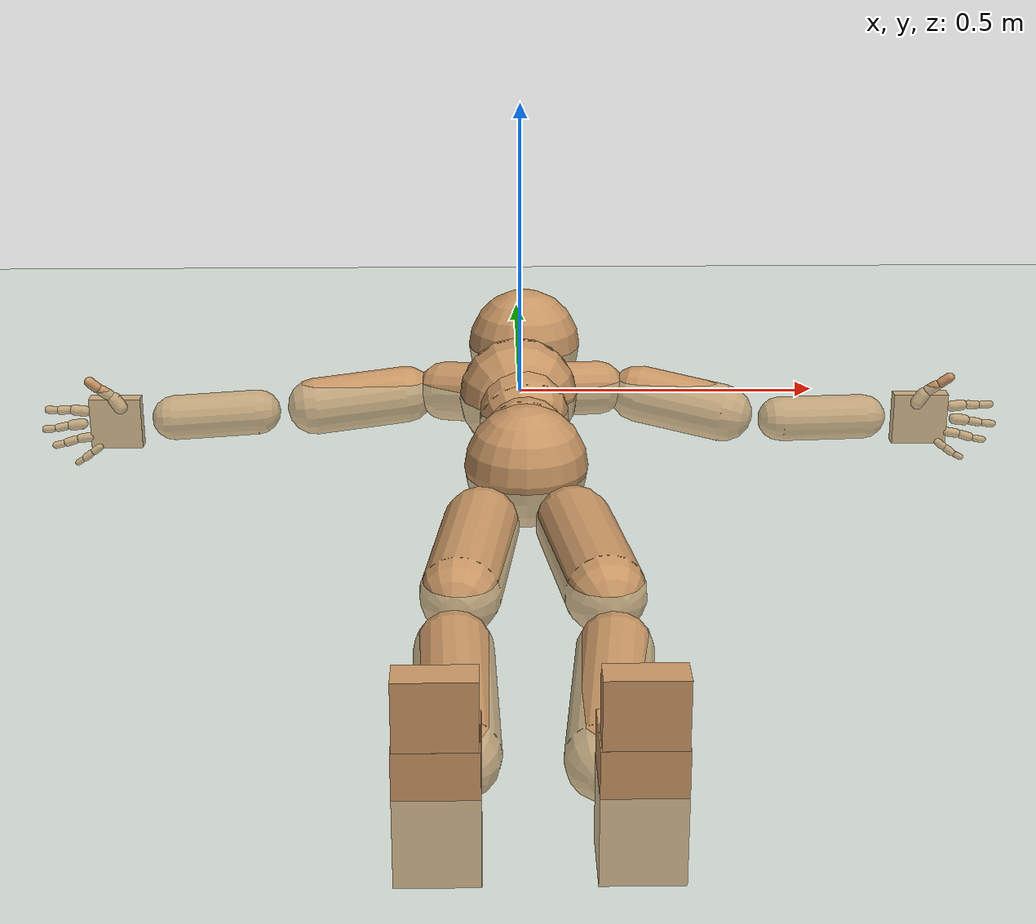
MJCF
<mujoco model="humanoid">
  <compiler coordinate="local"/>
  <default>
    <joint damping="0.0" armature="0.01" stiffness="0.0" limited="true"/>
    <geom conaffinity="1" condim="3" contype="7" margin="0.001" rgba="0.8 0.6 .4 1"/>
  </default>
  <asset>
    <texture type="skybox" builtin="gradient" rgb1=".4 .5 .6" rgb2="0 0 0" width="100" height="100"/>
    <texture builtin="flat" height="1278" mark="cross" markrgb="1 1 1" name="texgeom" random="0.01" rgb1="0.8 0.6 0.4" rgb2="0.8 0.6 0.4" type="cube" width="127"/>
    <texture builtin="checker" height="100" name="texplane" rgb1="0 0 0" rgb2="0.8 0.8 0.8" type="2d" width="100"/>
    <material name="MatPlane" reflectance="0.5" shininess="1" specular="1" texrepeat="60 60" texture="texplane"/>
    <material name="geom" texture="texgeom" texuniform="true"/>
  </asset>
  <worldbody>
    <light cutoff="100" diffuse="1 1 1" dir="-0 0 -1.3" directional="true" exponent="1" pos="0 0 1.3" specular=".1 .1 .1"/>
    <geom conaffinity="1" condim="3" name="floor" pos="0 0 0" rgba="0.8 0.9 0.8 1" size="100 100 .2" type="plane" material="MatPlane"/>
    <body name="Pelvis" pos="0.0029 -0.3604 0.0077">
      <freejoint name="Pelvis"/>
      <geom type="sphere" contype="1" conaffinity="1" density="4629.6296296296305" size="0.0954" pos="0.0000 0.0000 0.0000" name="Pelvis"/>
      <body name="L_Hip" pos="0.0553 -0.0918 -0.0242">
        <joint name="L_Hip_x" type="hinge" pos="0 0 0" axis="1 0 0" user="250 2.5 1 500 10 2" armature="0.01" range="-90.0000 90.0000" damping="0" stiffness="0"/>
        <joint name="L_Hip_y" type="hinge" pos="0 0 0" axis="0 1 0" user="250 2.5 1 500 10 2" armature="0.01" range="-90.0000 90.0000" damping="0" stiffness="0"/>
        <joint name="L_Hip_z" type="hinge" pos="0 0 0" axis="0 0 1" user="250 2.5 1 500 10 2" armature="0.01" range="-90.0000 90.0000" damping="0" stiffness="0"/>
        <geom type="capsule" contype="1" conaffinity="1" density="2040.816327" fromto="0.0111 -0.0738 -0.0013 0.0445 -0.2952 -0.0052" size="0.0569" name="L_Hip"/>
        <body name="L_Knee" pos="0.0556 -0.3689 -0.0065">
          <joint name="L_Knee_x" type="hinge" pos="0 0 0" axis="1 0 0" user="250 2.5 1 500 10 2" armature="0.01" range="-180.0000 180.0000" damping="0" stiffness="0"/>
          <joint name="L_Knee_y" type="hinge" pos="0 0 0" axis="0 1 0" user="250 2.5 1 500 10 2" armature="0.01" range="-5.6250 5.6250" damping="0" stiffness="0"/>
          <joint name="L_Knee_z" type="hinge" pos="0 0 0" axis="0 0 1" user="250 2.5 1 500 10 2" armature="0.01" range="-5.6250 5.6250" damping="0" stiffness="0"/>
          <geom type="capsule" contype="1" conaffinity="1" density="1234.567901" fromto="-0.0082 -0.0786 -0.0057 -0.0327 -0.3144 -0.0227" size="0.0505" name="L_Knee"/>
          <body name="L_Ankle" pos="-0.0409 -0.393 -0.0284">
            <joint name="L_Ankle_x" type="hinge" pos="0 0 0" axis="1 0 0" user="150 2.5 1 500 10 2" armature="0.01" range="-90.0000 90.0000" damping="0" stiffness="0"/>
            <joint name="L_Ankle_y" type="hinge" pos="0 0 0" axis="0 1 0" user="150 2.5 1 500 10 2" armature="0.01" range="-90.0000 90.0000" damping="0" stiffness="0"/>
            <joint name="L_Ankle_z" type="hinge" pos="0 0 0" axis="0 0 1" user="150 2.5 1 500 10 2" armature="0.01" range="-90.0000 90.0000" damping="0" stiffness="0"/>
            <geom type="box" density="442.192961" pos="0.0393 -0.0284 0.0233" size="0.0486 0.046 0.0839" quat="1.0000 0.0000 0.0000 0.0000" name="L_Ankle"/>
            <body name="L_Toe" pos="0.0455 -0.0576 0.1164">
              <joint name="L_Toe_x" type="hinge" pos="0 0 0" axis="1 0 0" user="150 1 1 500 1 1" armature="0.01" range="-90.0000 90.0000" damping="0" stiffness="0"/>
              <joint name="L_Toe_y" type="hinge" pos="0 0 0" axis="0 1 0" user="150 1 1 500 1 1" armature="0.01" range="-45.0000 45.0000" damping="0" stiffness="0"/>
              <joint name="L_Toe_z" type="hinge" pos="0 0 0" axis="0 0 1" user="150 1 1 500 1 1" armature="0.01" range="-45.0000 45.0000" damping="0" stiffness="0"/>
              <geom type="box" density="423.525445" pos="-0.0061 0.0036 0.0255" size="0.0471 0.0203 0.0491" quat="1.0000 0.0000 0.0000 0.0000" name="L_Toe"/>
            </body>
          </body>
        </body>
      </body>
      <body name="R_Hip" pos="-0.0602 -0.1032 -0.0197">
        <joint name="R_Hip_x" type="hinge" pos="0 0 0" axis="1 0 0" user="250 2.5 1 500 10 2" armature="0.01" range="-90.0000 90.0000" damping="0" stiffness="0"/>
        <joint name="R_Hip_y" type="hinge" pos="0 0 0" axis="0 1 0" user="250 2.5 1 500 10 2" armature="0.01" range="-90.0000 90.0000" damping="0" stiffness="0"/>
        <joint name="R_Hip_z" type="hinge" pos="0 0 0" axis="0 0 1" user="250 2.5 1 500 10 2" armature="0.01" range="-90.0000 90.0000" damping="0" stiffness="0"/>
        <geom type="capsule" contype="1" conaffinity="1" density="2040.816327" fromto="-0.0091 -0.0704 -0.0027 -0.0364 -0.2818 -0.0109" size="0.0561" name="R_Hip"/>
        <body name="R_Knee" pos="-0.0455 -0.3522 -0.0136">
          <joint name="R_Knee_x" type="hinge" pos="0 0 0" axis="1 0 0" user="250 2.5 1 500 10 2" armature="0.01" range="-180.0000 180.0000" damping="0" stiffness="0"/>
          <joint name="R_Knee_y" type="hinge" pos="0 0 0" axis="0 1 0" user="250 2.5 1 500 10 2" armature="0.01" range="-5.6250 5.6250" damping="0" stiffness="0"/>
          <joint name="R_Knee_z" type="hinge" pos="0 0 0" axis="0 0 1" user="250 2.5 1 500 10 2" armature="0.01" range="-5.6250 5.6250" damping="0" stiffness="0"/>
          <geom type="capsule" contype="1" conaffinity="1" density="1234.567901" fromto="0.0029 -0.0802 -0.0034 0.0114 -0.3206 -0.0138" size="0.052" name="R_Knee"/>
          <body name="R_Ankle" pos="0.0143 -0.4008 -0.0172">
            <joint name="R_Ankle_x" type="hinge" pos="0 0 0" axis="1 0 0" user="150 1 1 500 10 2" armature="0.01" range="-90.0000 90.0000" damping="0" stiffness="0"/>
            <joint name="R_Ankle_y" type="hinge" pos="0 0 0" axis="0 1 0" user="150 1 1 500 10 2" armature="0.01" range="-90.0000 90.0000" damping="0" stiffness="0"/>
            <joint name="R_Ankle_z" type="hinge" pos="0 0 0" axis="0 0 1" user="150 1 1 500 10 2" armature="0.01" range="-90.0000 90.0000" damping="0" stiffness="0"/>
            <geom type="box" density="442.193225" pos="-0.0238 -0.0259 0.0146" size="0.0486 0.046 0.0839" quat="1.0000 0.0000 0.0000 0.0000" name="R_Ankle"/>
            <body name="R_Toe" pos="-0.0378 -0.0579 0.1174">
              <joint name="R_Toe_x" type="hinge" pos="0 0 0" axis="1 0 0" user="150 1 1 500 1 1" armature="0.01" range="-90.0000 90.0000" damping="0" stiffness="0"/>
              <joint name="R_Toe_y" type="hinge" pos="0 0 0" axis="0 1 0" user="150 1 1 500 1 1" armature="0.01" range="-45.0000 45.0000" damping="0" stiffness="0"/>
              <joint name="R_Toe_z" type="hinge" pos="0 0 0" axis="0 0 1" user="150 1 1 500 1 1" armature="0.01" range="-45.0000 45.0000" damping="0" stiffness="0"/>
              <geom type="box" density="423.532219" pos="0.0140 0.0064 0.0158" size="0.0471 0.0203 0.0491" quat="1.0000 0.0000 0.0000 0.0000" name="R_Toe"/>
            </body>
          </body>
        </body>
      </body>
      <body name="Torso" pos="-0.0025 0.109 -0.0268">
        <joint name="Torso_x" type="hinge" pos="0 0 0" axis="1 0 0" user="500 5 1 500 10 2" armature="0.01" range="-60.0000 60.0000" damping="0" stiffness="0"/>
        <joint name="Torso_y" type="hinge" pos="0 0 0" axis="0 1 0" user="500 5 1 500 10 2" armature="0.01" range="-60.0000 60.0000" damping="0" stiffness="0"/>
        <joint name="Torso_z" type="hinge" pos="0 0 0" axis="0 0 1" user="500 5 1 500 10 2" armature="0.01" range="-60.0000 60.0000" damping="0" stiffness="0"/>
        <geom type="capsule" contype="1" conaffinity="1" density="2040.816327" fromto="0.0041 0.0618 -0.0024 0.0051 0.0756 -0.0029" size="0.0713" name="Torso"/>
        <body name="Spine" pos="0.0092 0.1374 -0.0053">
          <joint name="Spine_x" type="hinge" pos="0 0 0" axis="1 0 0" user="500 5 1 500 10 2" armature="0.01" range="-60.0000 60.0000" damping="0" stiffness="0"/>
          <joint name="Spine_y" type="hinge" pos="0 0 0" axis="0 1 0" user="500 5 1 500 10 2" armature="0.01" range="-60.0000 60.0000" damping="0" stiffness="0"/>
          <joint name="Spine_z" type="hinge" pos="0 0 0" axis="0 0 1" user="500 5 1 500 10 2" armature="0.01" range="-60.0000 60.0000" damping="0" stiffness="0"/>
          <geom type="capsule" contype="1" conaffinity="1" density="2040.816327" fromto="-0.0051 0.0240 0.0113 -0.0062 0.0293 0.0138" size="0.0753" name="Spine"/>
          <body name="Chest" pos="-0.0114 0.0533 0.0252">
            <joint name="Chest_x" type="hinge" pos="0 0 0" axis="1 0 0" user="500 5 1 500 10 2" armature="0.01" range="-60.0000 60.0000" damping="0" stiffness="0"/>
            <joint name="Chest_y" type="hinge" pos="0 0 0" axis="0 1 0" user="500 5 1 500 10 2" armature="0.01" range="-60.0000 60.0000" damping="0" stiffness="0"/>
            <joint name="Chest_z" type="hinge" pos="0 0 0" axis="0 0 1" user="500 5 1 500 10 2" armature="0.01" range="-60.0000 60.0000" damping="0" stiffness="0"/>
            <geom type="capsule" contype="1" conaffinity="1" density="2040.816327" fromto="-0.0019 0.0504 -0.0074 -0.0023 0.0616 -0.0090" size="0.1007" name="Chest"/>
            <body name="Neck" pos="-0.0118 0.166 -0.0292">
              <joint name="Neck_x" type="hinge" pos="0 0 0" axis="1 0 0" user="150 1 1 250 50 4" armature="0.01" range="-180.0000 180.0000" damping="0" stiffness="0"/>
              <joint name="Neck_y" type="hinge" pos="0 0 0" axis="0 1 0" user="150 1 1 250 50 4" armature="0.01" range="-180.0000 180.0000" damping="0" stiffness="0"/>
              <joint name="Neck_z" type="hinge" pos="0 0 0" axis="0 0 1" user="150 1 1 250 50 4" armature="0.01" range="-180.0000 180.0000" damping="0" stiffness="0"/>
              <geom type="capsule" contype="1" conaffinity="1" density="1000" fromto="0.0049 0.0318 0.0052 0.0197 0.1272 0.0207" size="0.0419" name="Neck"/>
              <body name="Head" pos="0.0247 0.159 0.0259">
                <joint name="Head_x" type="hinge" pos="0 0 0" axis="1 0 0" user="150 1 1 250 50 4" armature="0.01" range="-90.0000 90.0000" damping="0" stiffness="0"/>
                <joint name="Head_y" type="hinge" pos="0 0 0" axis="0 1 0" user="150 1 1 250 50 4" armature="0.01" range="-90.0000 90.0000" damping="0" stiffness="0"/>
                <joint name="Head_z" type="hinge" pos="0 0 0" axis="0 0 1" user="150 1 1 250 50 4" armature="0.01" range="-90.0000 90.0000" damping="0" stiffness="0"/>
                <geom type="sphere" contype="1" conaffinity="1" density="1000" size="0.1021" pos="0.0000 0.0000 0.0000" name="Head"/>
              </body>
            </body>
            <body name="L_Thorax" pos="0.0457 0.0853 -0.007">
              <joint name="L_Thorax_x" type="hinge" pos="0 0 0" axis="1 0 0" user="200 2 1 500 50 4" armature="0.01" range="-180.0000 180.0000" damping="0" stiffness="0"/>
              <joint name="L_Thorax_y" type="hinge" pos="0 0 0" axis="0 1 0" user="200 2 1 500 50 4" armature="0.01" range="-180.0000 180.0000" damping="0" stiffness="0"/>
              <joint name="L_Thorax_z" type="hinge" pos="0 0 0" axis="0 0 1" user="200 2 1 500 50 4" armature="0.01" range="-180.0000 180.0000" damping="0" stiffness="0"/>
              <geom type="capsule" contype="1" conaffinity="1" density="1000" fromto="0.0233 0.0123 -0.0036 0.0930 0.0490 -0.0145" size="0.047" name="L_Thorax"/>
              <body name="L_Shoulder" pos="0.1163 0.0613 -0.0181">
                <joint name="L_Shoulder_x" type="hinge" pos="0 0 0" axis="1 0 0" user="200 2 1 500 50 4" armature="0.01" range="-180.0000 180.0000" damping="0" stiffness="0"/>
                <joint name="L_Shoulder_y" type="hinge" pos="0 0 0" axis="0 1 0" user="200 2 1 500 50 4" armature="0.01" range="-180.0000 180.0000" damping="0" stiffness="0"/>
                <joint name="L_Shoulder_z" type="hinge" pos="0 0 0" axis="0 0 1" user="200 2 1 500 50 4" armature="0.01" range="-180.0000 180.0000" damping="0" stiffness="0"/>
                <geom type="capsule" contype="1" conaffinity="1" density="1000" fromto="0.0490 -0.0135 -0.0076 0.1959 -0.0538 -0.0303" size="0.0498" name="L_Shoulder"/>
                <body name="L_Elbow" pos="0.2448 -0.0673 -0.0379">
                  <joint name="L_Elbow_x" type="hinge" pos="0 0 0" axis="1 0 0" user="150 1 1 150 10 2" armature="0.01" range="-720.0000 720.0000" damping="0" stiffness="0"/>
                  <joint name="L_Elbow_y" type="hinge" pos="0 0 0" axis="0 1 0" user="150 1 1 150 10 2" armature="0.01" range="-720.0000 720.0000" damping="0" stiffness="0"/>
                  <joint name="L_Elbow_z" type="hinge" pos="0 0 0" axis="0 0 1" user="150 1 1 150 10 2" armature="0.01" range="-720.0000 720.0000" damping="0" stiffness="0"/>
                  <geom type="capsule" contype="1" conaffinity="1" density="1000" fromto="0.0492 0.0046 -0.0005 0.1970 0.0183 -0.0020" size="0.0386" name="L_Elbow"/>
                  <body name="L_Wrist" pos="0.2462 0.0229 -0.0025">
                    <joint name="L_Wrist_x" type="hinge" pos="0 0 0" axis="1 0 0" user="100 1 1 150 1 1" armature="0.01" range="-180.0000 180.0000" damping="0" stiffness="0"/>
                    <joint name="L_Wrist_y" type="hinge" pos="0 0 0" axis="0 1 0" user="100 1 1 150 1 1" armature="0.01" range="-180.0000 180.0000" damping="0" stiffness="0"/>
                    <joint name="L_Wrist_z" type="hinge" pos="0 0 0" axis="0 0 1" user="100 1 1 150 1 1" armature="0.01" range="-180.0000 180.0000" damping="0" stiffness="0"/>
                    <geom type="box" density="1210.549828" pos="0.0511 -0.0012 -0.0030" size="0.0473 0.0119 0.0452" quat="1.0000 0.0000 0.0000 0.0000" name="L_Wrist"/>
                    <body name="L_Index1" pos="0.0996 -0.0082 0.0191">
                      <joint name="L_Index1_x" type="hinge" pos="0 0 0" axis="1 0 0" user="100 10 1 150" armature="0.01" range="-180.0000 180.0000" damping="0" stiffness="0"/>
                      <joint name="L_Index1_y" type="hinge" pos="0 0 0" axis="0 1 0" user="100 10 1 150" armature="0.01" range="-180.0000 180.0000" damping="0" stiffness="0"/>
                      <joint name="L_Index1_z" type="hinge" pos="0 0 0" axis="0 0 1" user="100 10 1 150" armature="0.01" range="-180.0000 180.0000" damping="0" stiffness="0"/>
                      <geom type="capsule" contype="1" conaffinity="1" density="1000" fromto="0.0063 0.0004 0.0006 0.0253 0.0017 0.0023" size="0.0091" name="L_Index1"/>
                      <body name="L_Index2" pos="0.0316 0.0021 0.0029">
                        <joint name="L_Index2_x" type="hinge" pos="0 0 0" axis="1 0 0" user="100 10 1 150" armature="0.01" range="-180.0000 180.0000" damping="0" stiffness="0"/>
                        <joint name="L_Index2_y" type="hinge" pos="0 0 0" axis="0 1 0" user="100 10 1 150" armature="0.01" range="-180.0000 180.0000" damping="0" stiffness="0"/>
                        <joint name="L_Index2_z" type="hinge" pos="0 0 0" axis="0 0 1" user="100 10 1 150" armature="0.01" range="-180.0000 180.0000" damping="0" stiffness="0"/>
                        <geom type="capsule" contype="1" conaffinity="1" density="1000" fromto="0.0045 -0.0005 -0.0000 0.0178 -0.0019 -0.0001" size="0.0075" name="L_Index2"/>
                        <body name="L_Index3" pos="0.0223 -0.0024 -0.0001">
                          <joint name="L_Index3_x" type="hinge" pos="0 0 0" axis="1 0 0" user="100 10 1 150" armature="0.01" range="-180.0000 180.0000" damping="0" stiffness="0"/>
                          <joint name="L_Index3_y" type="hinge" pos="0 0 0" axis="0 1 0" user="100 10 1 150" armature="0.01" range="-180.0000 180.0000" damping="0" stiffness="0"/>
                          <joint name="L_Index3_z" type="hinge" pos="0 0 0" axis="0 0 1" user="100 10 1 150" armature="0.01" range="-180.0000 180.0000" damping="0" stiffness="0"/>
                          <geom type="capsule" contype="1" conaffinity="1" density="1000" fromto="0.0049 -0.0001 0.0004 0.0194 -0.0003 0.0015" size="0.0064" name="L_Index3"/>
                        </body>
                      </body>
                    </body>
                    <body name="L_Middle1" pos="0.107 -0.0061 -0.0038">
                      <joint name="L_Middle1_x" type="hinge" pos="0 0 0" axis="1 0 0" user="100 10 1 150" armature="0.01" range="-180.0000 180.0000" damping="0" stiffness="0"/>
                      <joint name="L_Middle1_y" type="hinge" pos="0 0 0" axis="0 1 0" user="100 10 1 150" armature="0.01" range="-180.0000 180.0000" damping="0" stiffness="0"/>
                      <joint name="L_Middle1_z" type="hinge" pos="0 0 0" axis="0 0 1" user="100 10 1 150" armature="0.01" range="-180.0000 180.0000" damping="0" stiffness="0"/>
                      <geom type="capsule" contype="1" conaffinity="1" density="1000" fromto="0.0061 0.0001 -0.0008 0.0243 0.0006 -0.0032" size="0.0093" name="L_Middle1"/>
                      <body name="L_Middle2" pos="0.0304 0.0007 -0.004">
                        <joint name="L_Middle2_x" type="hinge" pos="0 0 0" axis="1 0 0" user="100 10 1 150" armature="0.01" range="-180.0000 180.0000" damping="0" stiffness="0"/>
                        <joint name="L_Middle2_y" type="hinge" pos="0 0 0" axis="0 1 0" user="100 10 1 150" armature="0.01" range="-180.0000 180.0000" damping="0" stiffness="0"/>
                        <joint name="L_Middle2_z" type="hinge" pos="0 0 0" axis="0 0 1" user="100 10 1 150" armature="0.01" range="-180.0000 180.0000" damping="0" stiffness="0"/>
                        <geom type="capsule" contype="1" conaffinity="1" density="1000" fromto="0.0047 -0.0004 -0.0008 0.0186 -0.0016 -0.0033" size="0.007" name="L_Middle2"/>
                        <body name="L_Middle3" pos="0.0233 -0.002 -0.0041">
                          <joint name="L_Middle3_x" type="hinge" pos="0 0 0" axis="1 0 0" user="100 10 1 150" armature="0.01" range="-180.0000 180.0000" damping="0" stiffness="0"/>
                          <joint name="L_Middle3_y" type="hinge" pos="0 0 0" axis="0 1 0" user="100 10 1 150" armature="0.01" range="-180.0000 180.0000" damping="0" stiffness="0"/>
                          <joint name="L_Middle3_z" type="hinge" pos="0 0 0" axis="0 0 1" user="100 10 1 150" armature="0.01" range="-180.0000 180.0000" damping="0" stiffness="0"/>
                          <geom type="capsule" contype="1" conaffinity="1" density="1000" fromto="0.0051 -0.0000 -0.0004 0.0202 -0.0000 -0.0017" size="0.0061" name="L_Middle3"/>
                        </body>
                      </body>
                    </body>
                    <body name="L_Pinky1" pos="0.0821 -0.0138 -0.043">
                      <joint name="L_Pinky1_x" type="hinge" pos="0 0 0" axis="1 0 0" user="100 10 1 150" armature="0.01" range="-180.0000 180.0000" damping="0" stiffness="0"/>
                      <joint name="L_Pinky1_y" type="hinge" pos="0 0 0" axis="0 1 0" user="100 10 1 150" armature="0.01" range="-180.0000 180.0000" damping="0" stiffness="0"/>
                      <joint name="L_Pinky1_z" type="hinge" pos="0 0 0" axis="0 0 1" user="100 10 1 150" armature="0.01" range="-180.0000 180.0000" damping="0" stiffness="0"/>
                      <geom type="capsule" contype="1" conaffinity="1" density="1000" fromto="0.0031 -0.0002 -0.0024 0.0124 -0.0009 -0.0095" size="0.0066" name="L_Pinky1"/>
                      <body name="L_Pinky2" pos="0.0155 -0.0011 -0.0118">
                        <joint name="L_Pinky2_x" type="hinge" pos="0 0 0" axis="1 0 0" user="100 10 1 150" armature="0.01" range="-180.0000 180.0000" damping="0" stiffness="0"/>
                        <joint name="L_Pinky2_y" type="hinge" pos="0 0 0" axis="0 1 0" user="100 10 1 150" armature="0.01" range="-180.0000 180.0000" damping="0" stiffness="0"/>
                        <joint name="L_Pinky2_z" type="hinge" pos="0 0 0" axis="0 0 1" user="100 10 1 150" armature="0.01" range="-180.0000 180.0000" damping="0" stiffness="0"/>
                        <geom type="capsule" contype="1" conaffinity="1" density="1000" fromto="0.0031 -0.0003 -0.0022 0.0124 -0.0013 -0.0089" size="0.0065" name="L_Pinky2"/>
                        <body name="L_Pinky3" pos="0.0155 -0.0017 -0.0111">
                          <joint name="L_Pinky3_x" type="hinge" pos="0 0 0" axis="1 0 0" user="100 10 1 150" armature="0.01" range="-180.0000 180.0000" damping="0" stiffness="0"/>
                          <joint name="L_Pinky3_y" type="hinge" pos="0 0 0" axis="0 1 0" user="100 10 1 150" armature="0.01" range="-180.0000 180.0000" damping="0" stiffness="0"/>
                          <joint name="L_Pinky3_z" type="hinge" pos="0 0 0" axis="0 0 1" user="100 10 1 150" armature="0.01" range="-180.0000 180.0000" damping="0" stiffness="0"/>
                          <geom type="capsule" contype="1" conaffinity="1" density="1000" fromto="0.0035 0.0001 -0.0018 0.0140 0.0003 -0.0073" size="0.0049" name="L_Pinky3"/>
                        </body>
                      </body>
                    </body>
                    <body name="L_Ring1" pos="0.0953 -0.0088 -0.0268">
                      <joint name="L_Ring1_x" type="hinge" pos="0 0 0" axis="1 0 0" user="100 10 1 150" armature="0.01" range="-180.0000 180.0000" damping="0" stiffness="0"/>
                      <joint name="L_Ring1_y" type="hinge" pos="0 0 0" axis="0 1 0" user="100 10 1 150" armature="0.01" range="-180.0000 180.0000" damping="0" stiffness="0"/>
                      <joint name="L_Ring1_z" type="hinge" pos="0 0 0" axis="0 0 1" user="100 10 1 150" armature="0.01" range="-180.0000 180.0000" damping="0" stiffness="0"/>
                      <geom type="capsule" contype="1" conaffinity="1" density="1000" fromto="0.0056 0.0003 -0.0011 0.0222 0.0011 -0.0042" size="0.0079" name="L_Ring1"/>
                      <body name="L_Ring2" pos="0.0278 0.0013 -0.0053">
                        <joint name="L_Ring2_x" type="hinge" pos="0 0 0" axis="1 0 0" user="100 10 1 150" armature="0.01" range="-180.0000 180.0000" damping="0" stiffness="0"/>
                        <joint name="L_Ring2_y" type="hinge" pos="0 0 0" axis="0 1 0" user="100 10 1 150" armature="0.01" range="-180.0000 180.0000" damping="0" stiffness="0"/>
                        <joint name="L_Ring2_z" type="hinge" pos="0 0 0" axis="0 0 1" user="100 10 1 150" armature="0.01" range="-180.0000 180.0000" damping="0" stiffness="0"/>
                        <geom type="capsule" contype="1" conaffinity="1" density="1000" fromto="0.0045 -0.0003 -0.0014 0.0181 -0.0012 -0.0056" size="0.0074" name="L_Ring2"/>
                        <body name="L_Ring3" pos="0.0226 -0.0015 -0.0071">
                          <joint name="L_Ring3_x" type="hinge" pos="0 0 0" axis="1 0 0" user="100 10 1 150" armature="0.01" range="-180.0000 180.0000" damping="0" stiffness="0"/>
                          <joint name="L_Ring3_y" type="hinge" pos="0 0 0" axis="0 1 0" user="100 10 1 150" armature="0.01" range="-180.0000 180.0000" damping="0" stiffness="0"/>
                          <joint name="L_Ring3_z" type="hinge" pos="0 0 0" axis="0 0 1" user="100 10 1 150" armature="0.01" range="-180.0000 180.0000" damping="0" stiffness="0"/>
                          <geom type="capsule" contype="1" conaffinity="1" density="1000" fromto="0.0049 0.0001 -0.0010 0.0197 0.0004 -0.0040" size="0.0057" name="L_Ring3"/>
                        </body>
                      </body>
                    </body>
                    <body name="L_Thumb1" pos="0.0395 -0.0173 0.0251">
                      <joint name="L_Thumb1_x" type="hinge" pos="0 0 0" axis="1 0 0" user="100 10 1 150" armature="0.01" range="-180.0000 180.0000" damping="0" stiffness="0"/>
                      <joint name="L_Thumb1_y" type="hinge" pos="0 0 0" axis="0 1 0" user="100 10 1 150" armature="0.01" range="-180.0000 180.0000" damping="0" stiffness="0"/>
                      <joint name="L_Thumb1_z" type="hinge" pos="0 0 0" axis="0 0 1" user="100 10 1 150" armature="0.01" range="-180.0000 180.0000" damping="0" stiffness="0"/>
                      <geom type="capsule" contype="1" conaffinity="1" density="1000" fromto="0.0034 0.0002 0.0049 0.0135 0.0008 0.0197" size="0.0118" name="L_Thumb1"/>
                      <body name="L_Thumb2" pos="0.0169 0.001 0.0246">
                        <joint name="L_Thumb2_x" type="hinge" pos="0 0 0" axis="1 0 0" user="100 10 1 150" armature="0.01" range="-180.0000 180.0000" damping="0" stiffness="0"/>
                        <joint name="L_Thumb2_y" type="hinge" pos="0 0 0" axis="0 1 0" user="100 10 1 150" armature="0.01" range="-180.0000 180.0000" damping="0" stiffness="0"/>
                        <joint name="L_Thumb2_z" type="hinge" pos="0 0 0" axis="0 0 1" user="100 10 1 150" armature="0.01" range="-180.0000 180.0000" damping="0" stiffness="0"/>
                        <geom type="capsule" contype="1" conaffinity="1" density="1000" fromto="0.0041 -0.0010 0.0030 0.0163 -0.0040 0.0122" size="0.0094" name="L_Thumb2"/>
                        <body name="L_Thumb3" pos="0.0204 -0.0051 0.0152">
                          <joint name="L_Thumb3_x" type="hinge" pos="0 0 0" axis="1 0 0" user="100 10 1 150" armature="0.01" range="-180.0000 180.0000" damping="0" stiffness="0"/>
                          <joint name="L_Thumb3_y" type="hinge" pos="0 0 0" axis="0 1 0" user="100 10 1 150" armature="0.01" range="-180.0000 180.0000" damping="0" stiffness="0"/>
                          <joint name="L_Thumb3_z" type="hinge" pos="0 0 0" axis="0 0 1" user="100 10 1 150" armature="0.01" range="-180.0000 180.0000" damping="0" stiffness="0"/>
                          <geom type="capsule" contype="1" conaffinity="1" density="1000" fromto="0.0045 -0.0006 0.0034 0.0179 -0.0024 0.0138" size="0.0086" name="L_Thumb3"/>
                        </body>
                      </body>
                    </body>
                  </body>
                </body>
              </body>
            </body>
            <body name="R_Thorax" pos="-0.0467 0.0848 -0.0132">
              <joint name="R_Thorax_x" type="hinge" pos="0 0 0" axis="1 0 0" user="200 2 1 150 10 2" armature="0.01" range="-180.0000 180.0000" damping="0" stiffness="0"/>
              <joint name="R_Thorax_y" type="hinge" pos="0 0 0" axis="0 1 0" user="200 2 1 150 10 2" armature="0.01" range="-180.0000 180.0000" damping="0" stiffness="0"/>
              <joint name="R_Thorax_z" type="hinge" pos="0 0 0" axis="0 0 1" user="200 2 1 150 10 2" armature="0.01" range="-180.0000 180.0000" damping="0" stiffness="0"/>
              <geom type="capsule" contype="1" conaffinity="1" density="1000" fromto="-0.0200 0.0112 -0.0028 -0.0801 0.0447 -0.0112" size="0.0518" name="R_Thorax"/>
              <body name="R_Shoulder" pos="-0.1001 0.0559 -0.014">
                <joint name="R_Shoulder_x" type="hinge" pos="0 0 0" axis="1 0 0" user="200 2 1 250 10 2" armature="0.01" range="-180.0000 180.0000" damping="0" stiffness="0"/>
                <joint name="R_Shoulder_y" type="hinge" pos="0 0 0" axis="0 1 0" user="200 2 1 250 10 2" armature="0.01" range="-180.0000 180.0000" damping="0" stiffness="0"/>
                <joint name="R_Shoulder_z" type="hinge" pos="0 0 0" axis="0 0 1" user="200 2 1 250 10 2" armature="0.01" range="-180.0000 180.0000" damping="0" stiffness="0"/>
                <geom type="capsule" contype="1" conaffinity="1" density="1000" fromto="-0.0523 -0.0064 -0.0048 -0.2090 -0.0257 -0.0191" size="0.0497" name="R_Shoulder"/>
                <body name="R_Elbow" pos="-0.2613 -0.0321 -0.0239">
                  <joint name="R_Elbow_x" type="hinge" pos="0 0 0" axis="1 0 0" user="150 1 1 150 10 2" armature="0.01" range="-720.0000 720.0000" damping="0" stiffness="0"/>
                  <joint name="R_Elbow_y" type="hinge" pos="0 0 0" axis="0 1 0" user="150 1 1 150 10 2" armature="0.01" range="-720.0000 720.0000" damping="0" stiffness="0"/>
                  <joint name="R_Elbow_z" type="hinge" pos="0 0 0" axis="0 0 1" user="150 1 1 150 10 2" armature="0.01" range="-720.0000 720.0000" damping="0" stiffness="0"/>
                  <geom type="capsule" contype="1" conaffinity="1" density="1000" fromto="-0.0487 -0.0007 -0.0029 -0.1948 -0.0027 -0.0118" size="0.0389" name="R_Elbow"/>
                  <body name="R_Wrist" pos="-0.2435 -0.0034 -0.0147">
                    <joint name="R_Wrist_x" type="hinge" pos="0 0 0" axis="1 0 0" user="100 1 1 150 1 1" armature="0.01" range="-180.0000 180.0000" damping="0" stiffness="0"/>
                    <joint name="R_Wrist_y" type="hinge" pos="0 0 0" axis="0 1 0" user="100 1 1 150 1 1" armature="0.01" range="-180.0000 180.0000" damping="0" stiffness="0"/>
                    <joint name="R_Wrist_z" type="hinge" pos="0 0 0" axis="0 0 1" user="100 1 1 150 1 1" armature="0.01" range="-180.0000 180.0000" damping="0" stiffness="0"/>
                    <geom type="box" density="1240.635769" pos="-0.0524 -0.0043 -0.0026" size="0.0445 0.0119 0.0452" quat="1.0000 0.0000 0.0000 0.0000" name="R_Wrist"/>
                    <body name="R_Index1" pos="-0.0976 -0.0113 0.0195">
                      <joint name="R_Index1_x" type="hinge" pos="0 0 0" axis="1 0 0" user="100 10 1 150" armature="0.01" range="-180.0000 180.0000" damping="0" stiffness="0"/>
                      <joint name="R_Index1_y" type="hinge" pos="0 0 0" axis="0 1 0" user="100 10 1 150" armature="0.01" range="-180.0000 180.0000" damping="0" stiffness="0"/>
                      <joint name="R_Index1_z" type="hinge" pos="0 0 0" axis="0 0 1" user="100 10 1 150" armature="0.01" range="-180.0000 180.0000" damping="0" stiffness="0"/>
                      <geom type="capsule" contype="1" conaffinity="1" density="1000" fromto="-0.0063 0.0004 0.0006 -0.0253 0.0017 0.0023" size="0.0091" name="R_Index1"/>
                      <body name="R_Index2" pos="-0.0316 0.0021 0.0029">
                        <joint name="R_Index2_x" type="hinge" pos="0 0 0" axis="1 0 0" user="100 10 1 150" armature="0.01" range="-180.0000 180.0000" damping="0" stiffness="0"/>
                        <joint name="R_Index2_y" type="hinge" pos="0 0 0" axis="0 1 0" user="100 10 1 150" armature="0.01" range="-180.0000 180.0000" damping="0" stiffness="0"/>
                        <joint name="R_Index2_z" type="hinge" pos="0 0 0" axis="0 0 1" user="100 10 1 150" armature="0.01" range="-180.0000 180.0000" damping="0" stiffness="0"/>
                        <geom type="capsule" contype="1" conaffinity="1" density="1000" fromto="-0.0045 -0.0005 -0.0000 -0.0178 -0.0019 -0.0001" size="0.0075" name="R_Index2"/>
                        <body name="R_Index3" pos="-0.0223 -0.0024 -0.0001">
                          <joint name="R_Index3_x" type="hinge" pos="0 0 0" axis="1 0 0" user="100 10 1 150" armature="0.01" range="-180.0000 180.0000" damping="0" stiffness="0"/>
                          <joint name="R_Index3_y" type="hinge" pos="0 0 0" axis="0 1 0" user="100 10 1 150" armature="0.01" range="-180.0000 180.0000" damping="0" stiffness="0"/>
                          <joint name="R_Index3_z" type="hinge" pos="0 0 0" axis="0 0 1" user="100 10 1 150" armature="0.01" range="-180.0000 180.0000" damping="0" stiffness="0"/>
                          <geom type="capsule" contype="1" conaffinity="1" density="1000" fromto="-0.0041 -0.0001 0.0004 -0.0162 -0.0003 0.0015" size="0.0067" name="R_Index3"/>
                        </body>
                      </body>
                    </body>
                    <body name="R_Middle1" pos="-0.105 -0.0092 -0.0034">
                      <joint name="R_Middle1_x" type="hinge" pos="0 0 0" axis="1 0 0" user="100 10 1 150" armature="0.01" range="-180.0000 180.0000" damping="0" stiffness="0"/>
                      <joint name="R_Middle1_y" type="hinge" pos="0 0 0" axis="0 1 0" user="100 10 1 150" armature="0.01" range="-180.0000 180.0000" damping="0" stiffness="0"/>
                      <joint name="R_Middle1_z" type="hinge" pos="0 0 0" axis="0 0 1" user="100 10 1 150" armature="0.01" range="-180.0000 180.0000" damping="0" stiffness="0"/>
                      <geom type="capsule" contype="1" conaffinity="1" density="1000" fromto="-0.0061 0.0001 -0.0008 -0.0243 0.0006 -0.0032" size="0.0093" name="R_Middle1"/>
                      <body name="R_Middle2" pos="-0.0304 0.0007 -0.004">
                        <joint name="R_Middle2_x" type="hinge" pos="0 0 0" axis="1 0 0" user="100 10 1 150" armature="0.01" range="-180.0000 180.0000" damping="0" stiffness="0"/>
                        <joint name="R_Middle2_y" type="hinge" pos="0 0 0" axis="0 1 0" user="100 10 1 150" armature="0.01" range="-180.0000 180.0000" damping="0" stiffness="0"/>
                        <joint name="R_Middle2_z" type="hinge" pos="0 0 0" axis="0 0 1" user="100 10 1 150" armature="0.01" range="-180.0000 180.0000" damping="0" stiffness="0"/>
                        <geom type="capsule" contype="1" conaffinity="1" density="1000" fromto="-0.0047 -0.0004 -0.0008 -0.0186 -0.0016 -0.0033" size="0.007" name="R_Middle2"/>
                        <body name="R_Middle3" pos="-0.0233 -0.002 -0.0041">
                          <joint name="R_Middle3_x" type="hinge" pos="0 0 0" axis="1 0 0" user="100 10 1 150" armature="0.01" range="-180.0000 180.0000" damping="0" stiffness="0"/>
                          <joint name="R_Middle3_y" type="hinge" pos="0 0 0" axis="0 1 0" user="100 10 1 150" armature="0.01" range="-180.0000 180.0000" damping="0" stiffness="0"/>
                          <joint name="R_Middle3_z" type="hinge" pos="0 0 0" axis="0 0 1" user="100 10 1 150" armature="0.01" range="-180.0000 180.0000" damping="0" stiffness="0"/>
                          <geom type="capsule" contype="1" conaffinity="1" density="1000" fromto="-0.0043 -0.0000 -0.0004 -0.0170 -0.0000 -0.0017" size="0.0064" name="R_Middle3"/>
                        </body>
                      </body>
                    </body>
                    <body name="R_Pinky1" pos="-0.0802 -0.017 -0.0426">
                      <joint name="R_Pinky1_x" type="hinge" pos="0 0 0" axis="1 0 0" user="100 10 1 150" armature="0.01" range="-180.0000 180.0000" damping="0" stiffness="0"/>
                      <joint name="R_Pinky1_y" type="hinge" pos="0 0 0" axis="0 1 0" user="100 10 1 150" armature="0.01" range="-180.0000 180.0000" damping="0" stiffness="0"/>
                      <joint name="R_Pinky1_z" type="hinge" pos="0 0 0" axis="0 0 1" user="100 10 1 150" armature="0.01" range="-180.0000 180.0000" damping="0" stiffness="0"/>
                      <geom type="capsule" contype="1" conaffinity="1" density="1000" fromto="-0.0031 -0.0002 -0.0024 -0.0124 -0.0009 -0.0095" size="0.0066" name="R_Pinky1"/>
                      <body name="R_Pinky2" pos="-0.0155 -0.0011 -0.0118">
                        <joint name="R_Pinky2_x" type="hinge" pos="0 0 0" axis="1 0 0" user="100 10 1 150" armature="0.01" range="-180.0000 180.0000" damping="0" stiffness="0"/>
                        <joint name="R_Pinky2_y" type="hinge" pos="0 0 0" axis="0 1 0" user="100 10 1 150" armature="0.01" range="-180.0000 180.0000" damping="0" stiffness="0"/>
                        <joint name="R_Pinky2_z" type="hinge" pos="0 0 0" axis="0 0 1" user="100 10 1 150" armature="0.01" range="-180.0000 180.0000" damping="0" stiffness="0"/>
                        <geom type="capsule" contype="1" conaffinity="1" density="1000" fromto="-0.0031 -0.0003 -0.0022 -0.0124 -0.0013 -0.0089" size="0.0065" name="R_Pinky2"/>
                        <body name="R_Pinky3" pos="-0.0155 -0.0017 -0.0111">
                          <joint name="R_Pinky3_x" type="hinge" pos="0 0 0" axis="1 0 0" user="100 10 1 150" armature="0.01" range="-180.0000 180.0000" damping="0" stiffness="0"/>
                          <joint name="R_Pinky3_y" type="hinge" pos="0 0 0" axis="0 1 0" user="100 10 1 150" armature="0.01" range="-180.0000 180.0000" damping="0" stiffness="0"/>
                          <joint name="R_Pinky3_z" type="hinge" pos="0 0 0" axis="0 0 1" user="100 10 1 150" armature="0.01" range="-180.0000 180.0000" damping="0" stiffness="0"/>
                          <geom type="capsule" contype="1" conaffinity="1" density="1000" fromto="-0.0027 0.0001 -0.0018 -0.0108 0.0003 -0.0073" size="0.0052" name="R_Pinky3"/>
                        </body>
                      </body>
                    </body>
                    <body name="R_Ring1" pos="-0.0933 -0.0119 -0.0264">
                      <joint name="R_Ring1_x" type="hinge" pos="0 0 0" axis="1 0 0" user="100 10 1 150" armature="0.01" range="-180.0000 180.0000" damping="0" stiffness="0"/>
                      <joint name="R_Ring1_y" type="hinge" pos="0 0 0" axis="0 1 0" user="100 10 1 150" armature="0.01" range="-180.0000 180.0000" damping="0" stiffness="0"/>
                      <joint name="R_Ring1_z" type="hinge" pos="0 0 0" axis="0 0 1" user="100 10 1 150" armature="0.01" range="-180.0000 180.0000" damping="0" stiffness="0"/>
                      <geom type="capsule" contype="1" conaffinity="1" density="1000" fromto="-0.0056 0.0003 -0.0011 -0.0222 0.0011 -0.0042" size="0.0079" name="R_Ring1"/>
                      <body name="R_Ring2" pos="-0.0278 0.0013 -0.0053">
                        <joint name="R_Ring2_x" type="hinge" pos="0 0 0" axis="1 0 0" user="100 10 1 150" armature="0.01" range="-180.0000 180.0000" damping="0" stiffness="0"/>
                        <joint name="R_Ring2_y" type="hinge" pos="0 0 0" axis="0 1 0" user="100 10 1 150" armature="0.01" range="-180.0000 180.0000" damping="0" stiffness="0"/>
                        <joint name="R_Ring2_z" type="hinge" pos="0 0 0" axis="0 0 1" user="100 10 1 150" armature="0.01" range="-180.0000 180.0000" damping="0" stiffness="0"/>
                        <geom type="capsule" contype="1" conaffinity="1" density="1000" fromto="-0.0045 -0.0003 -0.0014 -0.0181 -0.0012 -0.0056" size="0.0074" name="R_Ring2"/>
                        <body name="R_Ring3" pos="-0.0226 -0.0015 -0.0071">
                          <joint name="R_Ring3_x" type="hinge" pos="0 0 0" axis="1 0 0" user="100 10 1 150" armature="0.01" range="-180.0000 180.0000" damping="0" stiffness="0"/>
                          <joint name="R_Ring3_y" type="hinge" pos="0 0 0" axis="0 1 0" user="100 10 1 150" armature="0.01" range="-180.0000 180.0000" damping="0" stiffness="0"/>
                          <joint name="R_Ring3_z" type="hinge" pos="0 0 0" axis="0 0 1" user="100 10 1 150" armature="0.01" range="-180.0000 180.0000" damping="0" stiffness="0"/>
                          <geom type="capsule" contype="1" conaffinity="1" density="1000" fromto="-0.0041 0.0001 -0.0010 -0.0165 0.0004 -0.0040" size="0.006" name="R_Ring3"/>
                        </body>
                      </body>
                    </body>
                    <body name="R_Thumb1" pos="-0.0375 -0.0205 0.0255">
                      <joint name="R_Thumb1_x" type="hinge" pos="0 0 0" axis="1 0 0" user="100 10 1 150" armature="0.01" range="-180.0000 180.0000" damping="0" stiffness="0"/>
                      <joint name="R_Thumb1_y" type="hinge" pos="0 0 0" axis="0 1 0" user="100 10 1 150" armature="0.01" range="-180.0000 180.0000" damping="0" stiffness="0"/>
                      <joint name="R_Thumb1_z" type="hinge" pos="0 0 0" axis="0 0 1" user="100 10 1 150" armature="0.01" range="-180.0000 180.0000" damping="0" stiffness="0"/>
                      <geom type="capsule" contype="1" conaffinity="1" density="1000" fromto="-0.0034 0.0002 0.0049 -0.0135 0.0008 0.0197" size="0.0118" name="R_Thumb1"/>
                      <body name="R_Thumb2" pos="-0.0169 0.001 0.0246">
                        <joint name="R_Thumb2_x" type="hinge" pos="0 0 0" axis="1 0 0" user="100 10 1 150" armature="0.01" range="-180.0000 180.0000" damping="0" stiffness="0"/>
                        <joint name="R_Thumb2_y" type="hinge" pos="0 0 0" axis="0 1 0" user="100 10 1 150" armature="0.01" range="-180.0000 180.0000" damping="0" stiffness="0"/>
                        <joint name="R_Thumb2_z" type="hinge" pos="0 0 0" axis="0 0 1" user="100 10 1 150" armature="0.01" range="-180.0000 180.0000" damping="0" stiffness="0"/>
                        <geom type="capsule" contype="1" conaffinity="1" density="1000" fromto="-0.0041 -0.0010 0.0030 -0.0163 -0.0040 0.0122" size="0.0094" name="R_Thumb2"/>
                        <body name="R_Thumb3" pos="-0.0204 -0.0051 0.0152">
                          <joint name="R_Thumb3_x" type="hinge" pos="0 0 0" axis="1 0 0" user="100 10 1 150" armature="0.01" range="-180.0000 180.0000" damping="0" stiffness="0"/>
                          <joint name="R_Thumb3_y" type="hinge" pos="0 0 0" axis="0 1 0" user="100 10 1 150" armature="0.01" range="-180.0000 180.0000" damping="0" stiffness="0"/>
                          <joint name="R_Thumb3_z" type="hinge" pos="0 0 0" axis="0 0 1" user="100 10 1 150" armature="0.01" range="-180.0000 180.0000" damping="0" stiffness="0"/>
                          <geom type="capsule" contype="1" conaffinity="1" density="1000" fromto="-0.0037 -0.0006 0.0034 -0.0147 -0.0024 0.0138" size="0.0089" name="R_Thumb3"/>
                        </body>
                      </body>
                    </body>
                  </body>
                </body>
              </body>
            </body>
          </body>
        </body>
      </body>
    </body>
  </worldbody>
  <actuator>
    <motor name="L_Hip_x" joint="L_Hip_x" gear="1"/>
    <motor name="L_Hip_y" joint="L_Hip_y" gear="1"/>
    <motor name="L_Hip_z" joint="L_Hip_z" gear="1"/>
    <motor name="L_Knee_x" joint="L_Knee_x" gear="1"/>
    <motor name="L_Knee_y" joint="L_Knee_y" gear="1"/>
    <motor name="L_Knee_z" joint="L_Knee_z" gear="1"/>
    <motor name="L_Ankle_x" joint="L_Ankle_x" gear="1"/>
    <motor name="L_Ankle_y" joint="L_Ankle_y" gear="1"/>
    <motor name="L_Ankle_z" joint="L_Ankle_z" gear="1"/>
    <motor name="L_Toe_x" joint="L_Toe_x" gear="1"/>
    <motor name="L_Toe_y" joint="L_Toe_y" gear="1"/>
    <motor name="L_Toe_z" joint="L_Toe_z" gear="1"/>
    <motor name="R_Hip_x" joint="R_Hip_x" gear="1"/>
    <motor name="R_Hip_y" joint="R_Hip_y" gear="1"/>
    <motor name="R_Hip_z" joint="R_Hip_z" gear="1"/>
    <motor name="R_Knee_x" joint="R_Knee_x" gear="1"/>
    <motor name="R_Knee_y" joint="R_Knee_y" gear="1"/>
    <motor name="R_Knee_z" joint="R_Knee_z" gear="1"/>
    <motor name="R_Ankle_x" joint="R_Ankle_x" gear="1"/>
    <motor name="R_Ankle_y" joint="R_Ankle_y" gear="1"/>
    <motor name="R_Ankle_z" joint="R_Ankle_z" gear="1"/>
    <motor name="R_Toe_x" joint="R_Toe_x" gear="1"/>
    <motor name="R_Toe_y" joint="R_Toe_y" gear="1"/>
    <motor name="R_Toe_z" joint="R_Toe_z" gear="1"/>
    <motor name="Torso_x" joint="Torso_x" gear="1"/>
    <motor name="Torso_y" joint="Torso_y" gear="1"/>
    <motor name="Torso_z" joint="Torso_z" gear="1"/>
    <motor name="Spine_x" joint="Spine_x" gear="1"/>
    <motor name="Spine_y" joint="Spine_y" gear="1"/>
    <motor name="Spine_z" joint="Spine_z" gear="1"/>
    <motor name="Chest_x" joint="Chest_x" gear="1"/>
    <motor name="Chest_y" joint="Chest_y" gear="1"/>
    <motor name="Chest_z" joint="Chest_z" gear="1"/>
    <motor name="Neck_x" joint="Neck_x" gear="1"/>
    <motor name="Neck_y" joint="Neck_y" gear="1"/>
    <motor name="Neck_z" joint="Neck_z" gear="1"/>
    <motor name="Head_x" joint="Head_x" gear="1"/>
    <motor name="Head_y" joint="Head_y" gear="1"/>
    <motor name="Head_z" joint="Head_z" gear="1"/>
    <motor name="L_Thorax_x" joint="L_Thorax_x" gear="1"/>
    <motor name="L_Thorax_y" joint="L_Thorax_y" gear="1"/>
    <motor name="L_Thorax_z" joint="L_Thorax_z" gear="1"/>
    <motor name="L_Shoulder_x" joint="L_Shoulder_x" gear="1"/>
    <motor name="L_Shoulder_y" joint="L_Shoulder_y" gear="1"/>
    <motor name="L_Shoulder_z" joint="L_Shoulder_z" gear="1"/>
    <motor name="L_Elbow_x" joint="L_Elbow_x" gear="1"/>
    <motor name="L_Elbow_y" joint="L_Elbow_y" gear="1"/>
    <motor name="L_Elbow_z" joint="L_Elbow_z" gear="1"/>
    <motor name="L_Wrist_x" joint="L_Wrist_x" gear="1"/>
    <motor name="L_Wrist_y" joint="L_Wrist_y" gear="1"/>
    <motor name="L_Wrist_z" joint="L_Wrist_z" gear="1"/>
    <motor name="L_Index1_x" joint="L_Index1_x" gear="1"/>
    <motor name="L_Index1_y" joint="L_Index1_y" gear="1"/>
    <motor name="L_Index1_z" joint="L_Index1_z" gear="1"/>
    <motor name="L_Index2_x" joint="L_Index2_x" gear="1"/>
    <motor name="L_Index2_y" joint="L_Index2_y" gear="1"/>
    <motor name="L_Index2_z" joint="L_Index2_z" gear="1"/>
    <motor name="L_Index3_x" joint="L_Index3_x" gear="1"/>
    <motor name="L_Index3_y" joint="L_Index3_y" gear="1"/>
    <motor name="L_Index3_z" joint="L_Index3_z" gear="1"/>
    <motor name="L_Middle1_x" joint="L_Middle1_x" gear="1"/>
    <motor name="L_Middle1_y" joint="L_Middle1_y" gear="1"/>
    <motor name="L_Middle1_z" joint="L_Middle1_z" gear="1"/>
    <motor name="L_Middle2_x" joint="L_Middle2_x" gear="1"/>
    <motor name="L_Middle2_y" joint="L_Middle2_y" gear="1"/>
    <motor name="L_Middle2_z" joint="L_Middle2_z" gear="1"/>
    <motor name="L_Middle3_x" joint="L_Middle3_x" gear="1"/>
    <motor name="L_Middle3_y" joint="L_Middle3_y" gear="1"/>
    <motor name="L_Middle3_z" joint="L_Middle3_z" gear="1"/>
    <motor name="L_Pinky1_x" joint="L_Pinky1_x" gear="1"/>
    <motor name="L_Pinky1_y" joint="L_Pinky1_y" gear="1"/>
    <motor name="L_Pinky1_z" joint="L_Pinky1_z" gear="1"/>
    <motor name="L_Pinky2_x" joint="L_Pinky2_x" gear="1"/>
    <motor name="L_Pinky2_y" joint="L_Pinky2_y" gear="1"/>
    <motor name="L_Pinky2_z" joint="L_Pinky2_z" gear="1"/>
    <motor name="L_Pinky3_x" joint="L_Pinky3_x" gear="1"/>
    <motor name="L_Pinky3_y" joint="L_Pinky3_y" gear="1"/>
    <motor name="L_Pinky3_z" joint="L_Pinky3_z" gear="1"/>
    <motor name="L_Ring1_x" joint="L_Ring1_x" gear="1"/>
    <motor name="L_Ring1_y" joint="L_Ring1_y" gear="1"/>
    <motor name="L_Ring1_z" joint="L_Ring1_z" gear="1"/>
    <motor name="L_Ring2_x" joint="L_Ring2_x" gear="1"/>
    <motor name="L_Ring2_y" joint="L_Ring2_y" gear="1"/>
    <motor name="L_Ring2_z" joint="L_Ring2_z" gear="1"/>
    <motor name="L_Ring3_x" joint="L_Ring3_x" gear="1"/>
    <motor name="L_Ring3_y" joint="L_Ring3_y" gear="1"/>
    <motor name="L_Ring3_z" joint="L_Ring3_z" gear="1"/>
    <motor name="L_Thumb1_x" joint="L_Thumb1_x" gear="1"/>
    <motor name="L_Thumb1_y" joint="L_Thumb1_y" gear="1"/>
    <motor name="L_Thumb1_z" joint="L_Thumb1_z" gear="1"/>
    <motor name="L_Thumb2_x" joint="L_Thumb2_x" gear="1"/>
    <motor name="L_Thumb2_y" joint="L_Thumb2_y" gear="1"/>
    <motor name="L_Thumb2_z" joint="L_Thumb2_z" gear="1"/>
    <motor name="L_Thumb3_x" joint="L_Thumb3_x" gear="1"/>
    <motor name="L_Thumb3_y" joint="L_Thumb3_y" gear="1"/>
    <motor name="L_Thumb3_z" joint="L_Thumb3_z" gear="1"/>
    <motor name="R_Thorax_x" joint="R_Thorax_x" gear="1"/>
    <motor name="R_Thorax_y" joint="R_Thorax_y" gear="1"/>
    <motor name="R_Thorax_z" joint="R_Thorax_z" gear="1"/>
    <motor name="R_Shoulder_x" joint="R_Shoulder_x" gear="1"/>
    <motor name="R_Shoulder_y" joint="R_Shoulder_y" gear="1"/>
    <motor name="R_Shoulder_z" joint="R_Shoulder_z" gear="1"/>
    <motor name="R_Elbow_x" joint="R_Elbow_x" gear="1"/>
    <motor name="R_Elbow_y" joint="R_Elbow_y" gear="1"/>
    <motor name="R_Elbow_z" joint="R_Elbow_z" gear="1"/>
    <motor name="R_Wrist_x" joint="R_Wrist_x" gear="1"/>
    <motor name="R_Wrist_y" joint="R_Wrist_y" gear="1"/>
    <motor name="R_Wrist_z" joint="R_Wrist_z" gear="1"/>
    <motor name="R_Index1_x" joint="R_Index1_x" gear="1"/>
    <motor name="R_Index1_y" joint="R_Index1_y" gear="1"/>
    <motor name="R_Index1_z" joint="R_Index1_z" gear="1"/>
    <motor name="R_Index2_x" joint="R_Index2_x" gear="1"/>
    <motor name="R_Index2_y" joint="R_Index2_y" gear="1"/>
    <motor name="R_Index2_z" joint="R_Index2_z" gear="1"/>
    <motor name="R_Index3_x" joint="R_Index3_x" gear="1"/>
    <motor name="R_Index3_y" joint="R_Index3_y" gear="1"/>
    <motor name="R_Index3_z" joint="R_Index3_z" gear="1"/>
    <motor name="R_Middle1_x" joint="R_Middle1_x" gear="1"/>
    <motor name="R_Middle1_y" joint="R_Middle1_y" gear="1"/>
    <motor name="R_Middle1_z" joint="R_Middle1_z" gear="1"/>
    <motor name="R_Middle2_x" joint="R_Middle2_x" gear="1"/>
    <motor name="R_Middle2_y" joint="R_Middle2_y" gear="1"/>
    <motor name="R_Middle2_z" joint="R_Middle2_z" gear="1"/>
    <motor name="R_Middle3_x" joint="R_Middle3_x" gear="1"/>
    <motor name="R_Middle3_y" joint="R_Middle3_y" gear="1"/>
    <motor name="R_Middle3_z" joint="R_Middle3_z" gear="1"/>
    <motor name="R_Pinky1_x" joint="R_Pinky1_x" gear="1"/>
    <motor name="R_Pinky1_y" joint="R_Pinky1_y" gear="1"/>
    <motor name="R_Pinky1_z" joint="R_Pinky1_z" gear="1"/>
    <motor name="R_Pinky2_x" joint="R_Pinky2_x" gear="1"/>
    <motor name="R_Pinky2_y" joint="R_Pinky2_y" gear="1"/>
    <motor name="R_Pinky2_z" joint="R_Pinky2_z" gear="1"/>
    <motor name="R_Pinky3_x" joint="R_Pinky3_x" gear="1"/>
    <motor name="R_Pinky3_y" joint="R_Pinky3_y" gear="1"/>
    <motor name="R_Pinky3_z" joint="R_Pinky3_z" gear="1"/>
    <motor name="R_Ring1_x" joint="R_Ring1_x" gear="1"/>
    <motor name="R_Ring1_y" joint="R_Ring1_y" gear="1"/>
    <motor name="R_Ring1_z" joint="R_Ring1_z" gear="1"/>
    <motor name="R_Ring2_x" joint="R_Ring2_x" gear="1"/>
    <motor name="R_Ring2_y" joint="R_Ring2_y" gear="1"/>
    <motor name="R_Ring2_z" joint="R_Ring2_z" gear="1"/>
    <motor name="R_Ring3_x" joint="R_Ring3_x" gear="1"/>
    <motor name="R_Ring3_y" joint="R_Ring3_y" gear="1"/>
    <motor name="R_Ring3_z" joint="R_Ring3_z" gear="1"/>
    <motor name="R_Thumb1_x" joint="R_Thumb1_x" gear="1"/>
    <motor name="R_Thumb1_y" joint="R_Thumb1_y" gear="1"/>
    <motor name="R_Thumb1_z" joint="R_Thumb1_z" gear="1"/>
    <motor name="R_Thumb2_x" joint="R_Thumb2_x" gear="1"/>
    <motor name="R_Thumb2_y" joint="R_Thumb2_y" gear="1"/>
    <motor name="R_Thumb2_z" joint="R_Thumb2_z" gear="1"/>
    <motor name="R_Thumb3_x" joint="R_Thumb3_x" gear="1"/>
    <motor name="R_Thumb3_y" joint="R_Thumb3_y" gear="1"/>
    <motor name="R_Thumb3_z" joint="R_Thumb3_z" gear="1"/>
  </actuator>
  <contact>
    <exclude body1="Torso" body2="Chest"/>
    <exclude body1="Head" body2="Chest"/>
    <exclude body1="R_Knee" body2="R_Toe"/>
    <exclude body1="R_Knee" body2="L_Ankle"/>
    <exclude body1="R_Knee" body2="L_Toe"/>
    <exclude body1="L_Knee" body2="L_Toe"/>
    <exclude body1="L_Knee" body2="R_Ankle"/>
    <exclude body1="L_Knee" body2="R_Toe"/>
    <exclude body1="L_Shoulder" body2="Chest"/>
    <exclude body1="R_Shoulder" body2="Chest"/>
  </contact>
  <sensor/>
  <size njmax="700" nconmax="700"/>
</mujoco>
